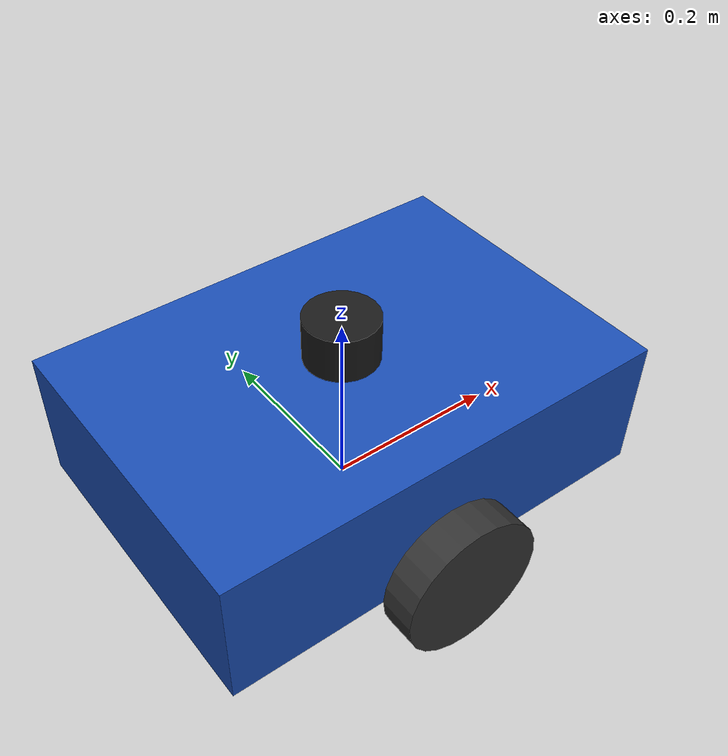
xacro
<?xml version="1.0"?>
<!--
  Simple Navigation Robot — Differential Drive + LiDAR
  A lightweight robot for warehouse navigation and object detection.
  No arms, no complex dependencies — just a base, wheels, and a sensor.
-->
<robot xmlns:xacro="http://www.ros.org/wiki/xacro" name="nav_robot">

  <!--  PROPERTIES                                             -->
  <xacro:property name="body_length" value="0.5"/>
  <xacro:property name="body_width"  value="0.35"/>
  <xacro:property name="body_height" value="0.15"/>
  <xacro:property name="body_mass"   value="10.0"/>

  <xacro:property name="wheel_radius" value="0.08"/>
  <xacro:property name="wheel_width"  value="0.04"/>
  <xacro:property name="wheel_mass"   value="0.5"/>

  <xacro:property name="caster_radius" value="0.04"/>
  <xacro:property name="caster_mass"   value="0.2"/>

  <xacro:property name="lidar_height" value="0.05"/>
  <xacro:property name="lidar_radius" value="0.04"/>

  <!--  BASE LINK                                              -->
  <link name="base_footprint"/>

  <link name="base_link">
    <visual>
      <geometry>
        <box size="${body_length} ${body_width} ${body_height}"/>
      </geometry>
      <material name="chassis_blue">
        <color rgba="0.1 0.3 0.7 1.0"/>
      </material>
    </visual>
    <collision>
      <geometry>
        <box size="${body_length} ${body_width} ${body_height}"/>
      </geometry>
    </collision>
    <inertial>
      <mass value="${body_mass}"/>
      <inertia
        ixx="${body_mass*(body_width*body_width + body_height*body_height)/12.0}"
        ixy="0" ixz="0"
        iyy="${body_mass*(body_length*body_length + body_height*body_height)/12.0}"
        iyz="0"
        izz="${body_mass*(body_length*body_length + body_width*body_width)/12.0}"/>
    </inertial>
  </link>

  <joint name="base_footprint_joint" type="fixed">
    <parent link="base_footprint"/>
    <child link="base_link"/>
    <origin xyz="0 0 ${wheel_radius + 0.01}" rpy="0 0 0"/>
  </joint>

  <!--  DRIVE WHEELS                                           -->
  <xacro:macro name="wheel" params="name y_offset">
    <link name="${name}_wheel_link">
      <visual>
        <geometry>
          <cylinder radius="${wheel_radius}" length="${wheel_width}"/>
        </geometry>
        <material name="wheel_dark">
          <color rgba="0.2 0.2 0.2 1.0"/>
        </material>
      </visual>
      <collision>
        <geometry>
          <cylinder radius="${wheel_radius}" length="${wheel_width}"/>
        </geometry>
        <surface>
          <friction>
            <ode>
              <mu>1.0</mu>
              <mu2>1.0</mu2>
            </ode>
          </friction>
        </surface>
      </collision>
      <inertial>
        <mass value="${wheel_mass}"/>
        <inertia
          ixx="${wheel_mass*(3*wheel_radius*wheel_radius + wheel_width*wheel_width)/12.0}"
          ixy="0" ixz="0"
          iyy="${wheel_mass*(3*wheel_radius*wheel_radius + wheel_width*wheel_width)/12.0}"
          iyz="0"
          izz="${wheel_mass*wheel_radius*wheel_radius/2.0}"/>
      </inertial>
    </link>
    <joint name="${name}_wheel_joint" type="continuous">
      <parent link="base_link"/>
      <child link="${name}_wheel_link"/>
      <origin xyz="0 ${y_offset} ${-body_height/2.0}" rpy="${-pi/2.0} 0 0"/>
      <axis xyz="0 0 1"/>
      <dynamics damping="0.1" friction="0.1"/>
    </joint>
  </xacro:macro>

  <xacro:wheel name="left"  y_offset="${body_width/2.0 + wheel_width/2.0}"/>
  <xacro:wheel name="right" y_offset="${-body_width/2.0 - wheel_width/2.0}"/>

  <!--  FRONT CASTER                                           -->
  <link name="caster_link">
    <visual>
      <geometry>
        <sphere radius="${caster_radius}"/>
      </geometry>
      <material name="caster_grey">
        <color rgba="0.5 0.5 0.5 1.0"/>
      </material>
    </visual>
    <collision>
      <geometry>
        <sphere radius="${caster_radius}"/>
      </geometry>
      <surface>
        <friction>
          <ode>
            <mu>0.0</mu>
            <mu2>0.0</mu2>
          </ode>
        </friction>
      </surface>
    </collision>
    <inertial>
      <mass value="${caster_mass}"/>
      <inertia
        ixx="${2.0*caster_mass*caster_radius*caster_radius/5.0}"
        ixy="0" ixz="0"
        iyy="${2.0*caster_mass*caster_radius*caster_radius/5.0}"
        iyz="0"
        izz="${2.0*caster_mass*caster_radius*caster_radius/5.0}"/>
    </inertial>
  </link>

  <joint name="caster_joint" type="fixed">
    <parent link="base_link"/>
    <child link="caster_link"/>
    <origin xyz="${body_length/2.0 - caster_radius} 0 ${-body_height/2.0 - wheel_radius + caster_radius}" rpy="0 0 0"/>
  </joint>

  <!--  LIDAR SENSOR                                           -->
  <link name="lidar_link">
    <visual>
      <geometry>
        <cylinder radius="${lidar_radius}" length="${lidar_height}"/>
      </geometry>
      <material name="lidar_black">
        <color rgba="0.1 0.1 0.1 1.0"/>
      </material>
    </visual>
    <collision>
      <geometry>
        <cylinder radius="${lidar_radius}" length="${lidar_height}"/>
      </geometry>
    </collision>
    <inertial>
      <mass value="0.15"/>
      <inertia ixx="0.0001" ixy="0" ixz="0"
               iyy="0.0001" iyz="0"
               izz="0.0001"/>
    </inertial>
  </link>

  <joint name="lidar_joint" type="fixed">
    <parent link="base_link"/>
    <child link="lidar_link"/>
    <origin xyz="0 0 ${body_height/2.0 + lidar_height/2.0}" rpy="0 0 0"/>
  </joint>

  <!-- Gazebo GPU LiDAR sensor -->
  <gazebo reference="lidar_link">
    <sensor name="gpu_lidar" type="gpu_lidar">
      <always_on>true</always_on>
      <update_rate>10</update_rate>
      <topic>scan</topic>
      <gz_frame_id>lidar_link</gz_frame_id>
      <visualize>true</visualize>
      <ray>
        <scan>
          <horizontal>
            <samples>720</samples>
            <resolution>1</resolution>
            <min_angle>-3.14159</min_angle>
            <max_angle>3.14159</max_angle>
          </horizontal>
        </scan>
        <range>
          <min>0.10</min>
          <max>12.0</max>
          <resolution>0.01</resolution>
        </range>
        <noise>
          <type>gaussian</type>
          <mean>0.0</mean>
          <stddev>0.01</stddev>
        </noise>
      </ray>
    </sensor>
  </gazebo>

  <!--  IMU SENSOR                                             -->
  <link name="imu_link">
    <inertial>
      <mass value="0.01"/>
      <inertia ixx="0.00001" ixy="0" ixz="0"
               iyy="0.00001" iyz="0" izz="0.00001"/>
    </inertial>
  </link>

  <joint name="imu_joint" type="fixed">
    <parent link="base_link"/>
    <child link="imu_link"/>
    <origin xyz="0 0 0" rpy="0 0 0"/>
  </joint>

  <gazebo reference="imu_link">
    <sensor name="imu_sensor" type="imu">
      <always_on>true</always_on>
      <update_rate>50</update_rate>
      <topic>imu</topic>
      <gz_frame_id>imu_link</gz_frame_id>
    </sensor>
  </gazebo>

  <!--  GAZEBO DIFF-DRIVE PLUGIN                               -->
  <gazebo>
    <!-- Differential drive controller -->
    <plugin filename="gz-sim-diff-drive-system" name="gz::sim::systems::DiffDrive">
      <left_joint>left_wheel_joint</left_joint>
      <right_joint>right_wheel_joint</right_joint>
      <wheel_separation>${body_width + wheel_width}</wheel_separation>
      <wheel_radius>${wheel_radius}</wheel_radius>
      <max_linear_acceleration>1.0</max_linear_acceleration>
      <max_angular_acceleration>2.0</max_angular_acceleration>
      <odom_publish_frequency>20</odom_publish_frequency>
      <topic>cmd_vel</topic>
      <odom_topic>odom</odom_topic>
      <tf_topic>tf</tf_topic>
      <frame_id>odom</frame_id>
      <child_frame_id>base_footprint</child_frame_id>
    </plugin>

    <!-- Joint state publisher -->
    <plugin filename="gz-sim-joint-state-publisher-system"
            name="gz::sim::systems::JointStatePublisher">
      <joint_name>left_wheel_joint</joint_name>
      <joint_name>right_wheel_joint</joint_name>
      <topic>joint_states</topic>
    </plugin>
  </gazebo>

</robot>
